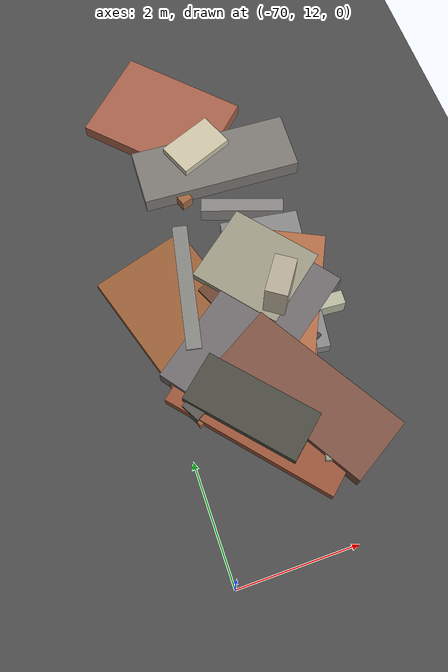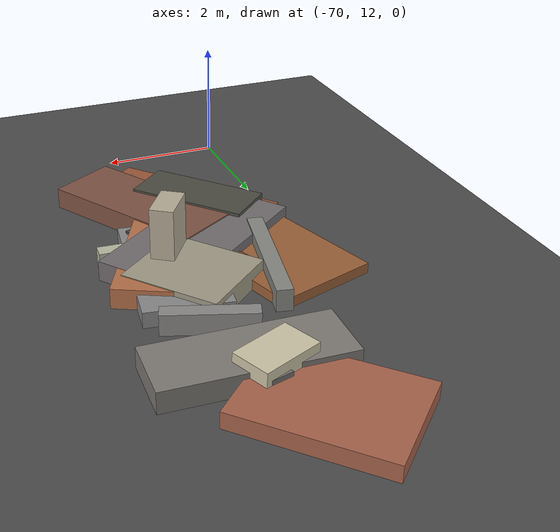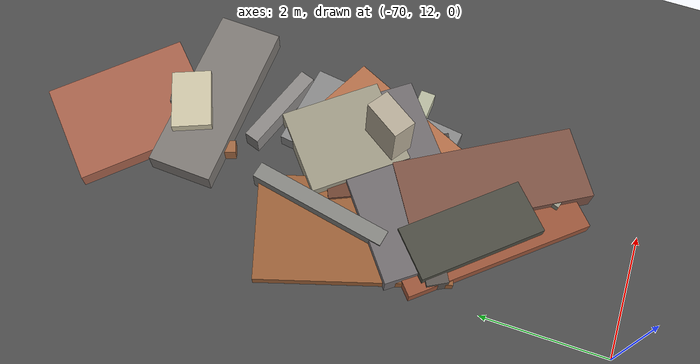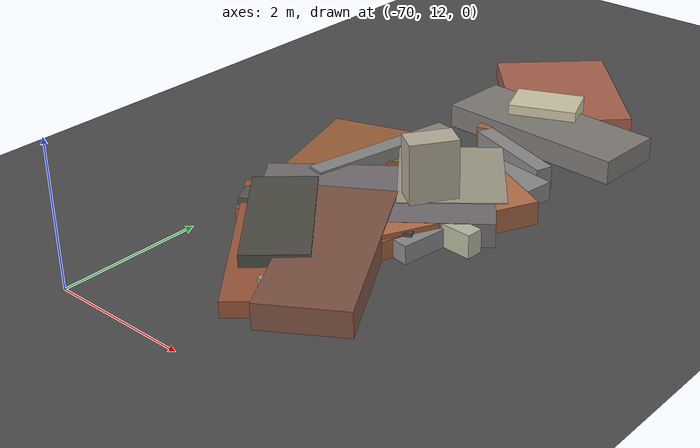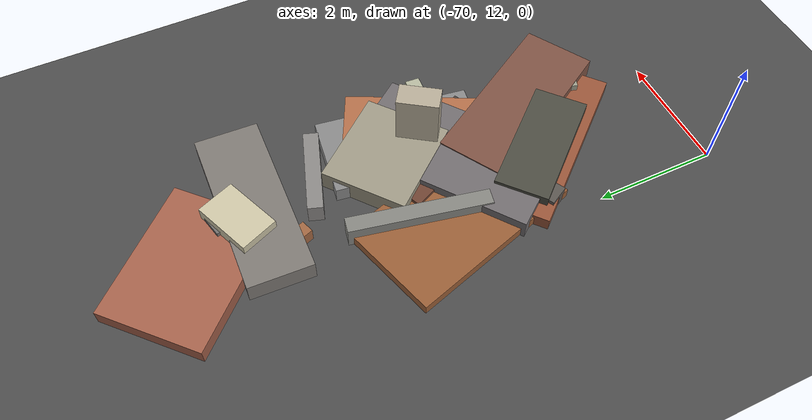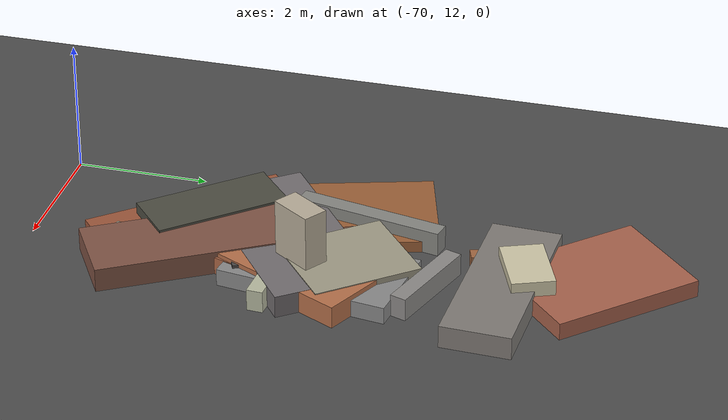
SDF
<sdf version="1.6">
 <world name="navitas_arena">
  <model name="ground_plane">
   <static>true</static>
   <link name="link">
    <collision name="collision">
     <geometry><plane><normal>0 0 1</normal><size>400 400</size></plane></geometry>
     <surface><friction><ode><mu>0.800</mu><mu2>0.800</mu2></ode></friction></surface>
    </collision>
    <visual name="visual">
     <cast_shadows>false</cast_shadows>
     <geometry><plane><normal>0 0 1</normal><size>400 400</size></plane></geometry>
     <material>
      <specular>0.04 0.04 0.04 1</specular>
      <script>
       <uri>file://media/materials/scripts/navitas_asphalt.material</uri>
       <name>Navitas/RealArenaAsphalt</name>
      </script>
     </material>
    </visual>
   </link>
  </model>
  <model name="deb_kolay_20">
   <static>true</static>
   <pose>-68.473 16.077 0.000 0 0 0</pose>
   <link name="link">
    <collision name="col_0">
     <pose>0.680 0.063 0.590 0.000 0.000 0.973</pose>
     <geometry><box><size>0.672 0.378 1.181</size></box></geometry>
    </collision>
    <visual name="vis_0">
     <pose>0.680 0.063 0.590 0.000 0.000 0.973</pose>
     <geometry><box><size>0.672 0.378 1.181</size></box></geometry>
     <material>
      <ambient>0.67 0.63 0.55 1</ambient>
      <diffuse>0.72 0.68 0.60 1</diffuse>
      <specular>0.05 0.05 0.045 1</specular>
     </material>
    </visual>
    <collision name="col_1">
     <pose>0.507 -1.073 0.138 0.000 0.000 1.296</pose>
     <geometry><box><size>1.503 0.236 0.276</size></box></geometry>
    </collision>
    <visual name="vis_1">
     <pose>0.507 -1.073 0.138 0.000 0.000 1.296</pose>
     <geometry><box><size>1.503 0.236 0.276</size></box></geometry>
     <material>
      <ambient>0.31 0.32 0.30 1</ambient>
      <diffuse>0.33 0.34 0.33 1</diffuse>
      <specular>0.05 0.05 0.045 1</specular>
     </material>
    </visual>
    <collision name="col_2">
     <pose>-0.726 0.716 0.182 0.000 0.000 1.370</pose>
     <geometry><box><size>2.263 0.260 0.363</size></box></geometry>
    </collision>
    <visual name="vis_2">
     <pose>-0.726 0.716 0.182 0.000 0.000 1.370</pose>
     <geometry><box><size>2.263 0.260 0.363</size></box></geometry>
     <material>
      <ambient>0.49 0.49 0.47 1</ambient>
      <diffuse>0.53 0.53 0.51 1</diffuse>
      <specular>0.05 0.05 0.045 1</specular>
     </material>
    </visual>
    <collision name="col_3">
     <pose>-0.876 0.113 0.086 0.000 0.000 1.872</pose>
     <geometry><box><size>3.021 1.723 0.171</size></box></geometry>
    </collision>
    <visual name="vis_3">
     <pose>-0.876 0.113 0.086 0.000 0.000 1.872</pose>
     <geometry><box><size>3.021 1.723 0.171</size></box></geometry>
     <material>
      <ambient>0.57 0.35 0.20 1</ambient>
      <diffuse>0.61 0.38 0.22 1</diffuse>
      <specular>0.05 0.05 0.045 1</specular>
     </material>
    </visual>
    <collision name="col_4">
     <pose>0.510 0.709 0.173 0.000 0.000 0.686</pose>
     <geometry><box><size>1.432 1.633 0.347</size></box></geometry>
    </collision>
    <visual name="vis_4">
     <pose>0.510 0.709 0.173 0.000 0.000 0.686</pose>
     <geometry><box><size>1.432 1.633 0.347</size></box></geometry>
     <material>
      <ambient>0.59 0.57 0.49 1</ambient>
      <diffuse>0.63 0.61 0.53 1</diffuse>
      <specular>0.05 0.05 0.045 1</specular>
     </material>
    </visual>
    <collision name="col_5">
     <pose>0.085 -0.306 0.167 0.000 0.000 0.651</pose>
     <geometry><box><size>3.084 1.568 0.333</size></box></geometry>
    </collision>
    <visual name="vis_5">
     <pose>0.085 -0.306 0.167 0.000 0.000 0.651</pose>
     <geometry><box><size>3.084 1.568 0.333</size></box></geometry>
     <material>
      <ambient>0.42 0.40 0.41 1</ambient>
      <diffuse>0.45 0.43 0.44 1</diffuse>
      <specular>0.05 0.05 0.045 1</specular>
     </material>
    </visual>
   </link>
  </model>
  <model name="deb_kolay_27">
   <static>true</static>
   <pose>-68.431 18.974 0.000 0 0 0</pose>
   <link name="link">
    <collision name="col_0">
     <pose>-0.298 -0.391 0.116 0.000 0.000 1.917</pose>
     <geometry><box><size>0.384 0.211 0.233</size></box></geometry>
    </collision>
    <visual name="vis_0">
     <pose>-0.298 -0.391 0.116 0.000 0.000 1.917</pose>
     <geometry><box><size>0.384 0.211 0.233</size></box></geometry>
     <material>
      <ambient>0.59 0.38 0.24 1</ambient>
      <diffuse>0.64 0.41 0.26 1</diffuse>
      <specular>0.05 0.05 0.045 1</specular>
     </material>
    </visual>
    <collision name="col_1">
     <pose>0.386 0.588 0.167 0.000 0.000 1.818</pose>
     <geometry><box><size>0.354 0.419 0.335</size></box></geometry>
    </collision>
    <visual name="vis_1">
     <pose>0.386 0.588 0.167 0.000 0.000 1.818</pose>
     <geometry><box><size>0.354 0.419 0.335</size></box></geometry>
     <material>
      <ambient>0.41 0.41 0.39 1</ambient>
      <diffuse>0.45 0.44 0.43 1</diffuse>
      <specular>0.05 0.05 0.045 1</specular>
     </material>
    </visual>
    <collision name="col_2">
     <pose>0.224 0.345 0.245 0.000 0.000 1.963</pose>
     <geometry><box><size>0.635 0.994 0.490</size></box></geometry>
    </collision>
    <visual name="vis_2">
     <pose>0.224 0.345 0.245 0.000 0.000 1.963</pose>
     <geometry><box><size>0.635 0.994 0.490</size></box></geometry>
     <material>
      <ambient>0.75 0.72 0.61 1</ambient>
      <diffuse>0.81 0.78 0.66 1</diffuse>
      <specular>0.05 0.05 0.045 1</specular>
     </material>
    </visual>
    <collision name="col_3">
     <pose>0.633 -1.012 0.170 0.000 0.000 2.813</pose>
     <geometry><box><size>1.444 0.247 0.340</size></box></geometry>
    </collision>
    <visual name="vis_3">
     <pose>0.633 -1.012 0.170 0.000 0.000 2.813</pose>
     <geometry><box><size>1.444 0.247 0.340</size></box></geometry>
     <material>
      <ambient>0.51 0.50 0.49 1</ambient>
      <diffuse>0.55 0.54 0.53 1</diffuse>
      <specular>0.05 0.05 0.045 1</specular>
     </material>
    </visual>
    <collision name="col_4">
     <pose>-0.139 1.265 0.130 0.000 0.000 2.337</pose>
     <geometry><box><size>2.299 1.712 0.260</size></box></geometry>
    </collision>
    <visual name="vis_4">
     <pose>-0.139 1.265 0.130 0.000 0.000 2.337</pose>
     <geometry><box><size>2.299 1.712 0.260</size></box></geometry>
     <material>
      <ambient>0.61 0.36 0.28 1</ambient>
      <diffuse>0.66 0.39 0.30 1</diffuse>
      <specular>0.05 0.05 0.045 1</specular>
     </material>
    </visual>
    <collision name="col_5">
     <pose>0.480 0.042 0.171 0.000 0.000 3.100</pose>
     <geometry><box><size>2.832 1.034 0.342</size></box></geometry>
    </collision>
    <visual name="vis_5">
     <pose>0.480 0.042 0.171 0.000 0.000 3.100</pose>
     <geometry><box><size>2.832 1.034 0.342</size></box></geometry>
     <material>
      <ambient>0.46 0.45 0.43 1</ambient>
      <diffuse>0.50 0.48 0.46 1</diffuse>
      <specular>0.05 0.05 0.045 1</specular>
     </material>
    </visual>
   </link>
  </model>
  <model name="deb_kolay_200">
   <static>true</static>
   <pose>-68.568 14.465 0.000 0 0 0</pose>
   <link name="link">
    <collision name="col_0">
     <pose>0.779 -0.593 0.167 0.000 0.000 1.257</pose>
     <geometry><box><size>1.234 0.166 0.334</size></box></geometry>
    </collision>
    <visual name="vis_0">
     <pose>0.779 -0.593 0.167 0.000 0.000 1.257</pose>
     <geometry><box><size>1.234 0.166 0.334</size></box></geometry>
     <material>
      <ambient>0.57 0.58 0.51 1</ambient>
      <diffuse>0.62 0.62 0.55 1</diffuse>
      <specular>0.05 0.05 0.045 1</specular>
     </material>
    </visual>
    <collision name="col_1">
     <pose>-0.297 0.015 0.196 0.000 0.000 -0.846</pose>
     <geometry><box><size>2.039 0.873 0.391</size></box></geometry>
    </collision>
    <visual name="vis_1">
     <pose>-0.297 0.015 0.196 0.000 0.000 -0.846</pose>
     <geometry><box><size>2.039 0.873 0.391</size></box></geometry>
     <material>
      <ambient>0.28 0.28 0.24 1</ambient>
      <diffuse>0.30 0.30 0.26 1</diffuse>
      <specular>0.05 0.05 0.045 1</specular>
     </material>
    </visual>
    <collision name="col_2">
     <pose>0.019 -0.044 0.111 0.000 0.000 -0.858</pose>
     <geometry><box><size>3.042 1.545 0.221</size></box></geometry>
    </collision>
    <visual name="vis_2">
     <pose>0.019 -0.044 0.111 0.000 0.000 -0.858</pose>
     <geometry><box><size>3.042 1.545 0.221</size></box></geometry>
     <material>
      <ambient>0.56 0.32 0.21 1</ambient>
      <diffuse>0.61 0.34 0.23 1</diffuse>
      <specular>0.05 0.05 0.045 1</specular>
     </material>
    </visual>
    <collision name="col_3">
     <pose>-1.167 0.296 0.143 0.000 0.000 -1.069</pose>
     <geometry><box><size>0.346 0.195 0.287</size></box></geometry>
    </collision>
    <visual name="vis_3">
     <pose>-1.167 0.296 0.143 0.000 0.000 -1.069</pose>
     <geometry><box><size>0.346 0.195 0.287</size></box></geometry>
     <material>
      <ambient>0.34 0.32 0.30 1</ambient>
      <diffuse>0.36 0.34 0.32 1</diffuse>
      <specular>0.05 0.05 0.045 1</specular>
     </material>
    </visual>
    <collision name="col_4">
     <pose>0.638 -0.076 0.177 0.000 0.000 -1.029</pose>
     <geometry><box><size>2.909 1.185 0.354</size></box></geometry>
    </collision>
    <visual name="vis_4">
     <pose>0.638 -0.076 0.177 0.000 0.000 -1.029</pose>
     <geometry><box><size>2.909 1.185 0.354</size></box></geometry>
     <material>
      <ambient>0.46 0.30 0.25 1</ambient>
      <diffuse>0.50 0.33 0.27 1</diffuse>
      <specular>0.05 0.05 0.045 1</specular>
     </material>
    </visual>
    <collision name="col_5">
     <pose>-0.279 0.246 0.093 0.000 0.000 -0.943</pose>
     <geometry><box><size>2.373 0.218 0.185</size></box></geometry>
    </collision>
    <visual name="vis_5">
     <pose>-0.279 0.246 0.093 0.000 0.000 -0.943</pose>
     <geometry><box><size>2.373 0.218 0.185</size></box></geometry>
     <material>
      <ambient>0.67 0.65 0.55 1</ambient>
      <diffuse>0.72 0.70 0.60 1</diffuse>
      <specular>0.05 0.05 0.045 1</specular>
     </material>
    </visual>
    <collision name="col_6">
     <pose>-0.322 0.882 0.148 0.000 0.000 1.419</pose>
     <geometry><box><size>1.385 0.166 0.297</size></box></geometry>
    </collision>
    <visual name="vis_6">
     <pose>-0.322 0.882 0.148 0.000 0.000 1.419</pose>
     <geometry><box><size>1.385 0.166 0.297</size></box></geometry>
     <material>
      <ambient>0.45 0.43 0.41 1</ambient>
      <diffuse>0.48 0.46 0.45 1</diffuse>
      <specular>0.05 0.05 0.045 1</specular>
     </material>
    </visual>
   </link>
  </model>
  <model name="deb_kolay_205">
   <static>true</static>
   <pose>-67.836 15.958 0.000 0 0 0</pose>
   <link name="link">
    <collision name="col_0">
     <pose>0.245 -0.529 0.152 0.000 0.000 -1.127</pose>
     <geometry><box><size>0.509 0.264 0.304</size></box></geometry>
    </collision>
    <visual name="vis_0">
     <pose>0.245 -0.529 0.152 0.000 0.000 -1.127</pose>
     <geometry><box><size>0.509 0.264 0.304</size></box></geometry>
     <material>
      <ambient>0.27 0.26 0.25 1</ambient>
      <diffuse>0.30 0.28 0.27 1</diffuse>
      <specular>0.05 0.05 0.045 1</specular>
     </material>
    </visual>
    <collision name="col_1">
     <pose>0.061 0.263 0.069 0.000 0.000 -0.201</pose>
     <geometry><box><size>0.453 0.338 0.138</size></box></geometry>
    </collision>
    <visual name="vis_1">
     <pose>0.061 0.263 0.069 0.000 0.000 -0.201</pose>
     <geometry><box><size>0.453 0.338 0.138</size></box></geometry>
     <material>
      <ambient>0.47 0.46 0.39 1</ambient>
      <diffuse>0.51 0.50 0.42 1</diffuse>
      <specular>0.05 0.05 0.045 1</specular>
     </material>
    </visual>
    <collision name="col_2">
     <pose>-0.292 -0.414 0.134 0.000 0.000 1.248</pose>
     <geometry><box><size>1.486 1.474 0.268</size></box></geometry>
    </collision>
    <visual name="vis_2">
     <pose>-0.292 -0.414 0.134 0.000 0.000 1.248</pose>
     <geometry><box><size>1.486 1.474 0.268</size></box></geometry>
     <material>
      <ambient>0.63 0.38 0.26 1</ambient>
      <diffuse>0.68 0.41 0.28 1</diffuse>
      <specular>0.05 0.05 0.045 1</specular>
     </material>
    </visual>
    <collision name="col_3">
     <pose>0.034 0.105 0.166 0.000 0.000 1.116</pose>
     <geometry><box><size>2.555 1.352 0.332</size></box></geometry>
    </collision>
    <visual name="vis_3">
     <pose>0.034 0.105 0.166 0.000 0.000 1.116</pose>
     <geometry><box><size>2.555 1.352 0.332</size></box></geometry>
     <material>
      <ambient>0.66 0.41 0.27 1</ambient>
      <diffuse>0.71 0.44 0.29 1</diffuse>
      <specular>0.05 0.05 0.045 1</specular>
     </material>
    </visual>
    <collision name="col_4">
     <pose>0.060 0.451 0.129 0.000 0.000 1.429</pose>
     <geometry><box><size>2.567 1.370 0.258</size></box></geometry>
    </collision>
    <visual name="vis_4">
     <pose>0.060 0.451 0.129 0.000 0.000 1.429</pose>
     <geometry><box><size>2.567 1.370 0.258</size></box></geometry>
     <material>
      <ambient>0.50 0.50 0.50 1</ambient>
      <diffuse>0.54 0.54 0.54 1</diffuse>
      <specular>0.05 0.05 0.045 1</specular>
     </material>
    </visual>
    <collision name="col_5">
     <pose>0.037 -0.131 0.164 0.000 0.000 -0.063</pose>
     <geometry><box><size>2.066 0.238 0.328</size></box></geometry>
    </collision>
    <visual name="vis_5">
     <pose>0.037 -0.131 0.164 0.000 0.000 -0.063</pose>
     <geometry><box><size>2.066 0.238 0.328</size></box></geometry>
     <material>
      <ambient>0.67 0.67 0.58 1</ambient>
      <diffuse>0.72 0.73 0.63 1</diffuse>
      <specular>0.05 0.05 0.045 1</specular>
     </material>
    </visual>
    <collision name="col_6">
     <pose>-0.506 0.203 0.114 0.000 0.000 -1.145</pose>
     <geometry><box><size>1.569 0.787 0.227</size></box></geometry>
    </collision>
    <visual name="vis_6">
     <pose>-0.506 0.203 0.114 0.000 0.000 -1.145</pose>
     <geometry><box><size>1.569 0.787 0.227</size></box></geometry>
     <material>
      <ambient>0.41 0.25 0.19 1</ambient>
      <diffuse>0.44 0.27 0.20 1</diffuse>
      <specular>0.05 0.05 0.045 1</specular>
     </material>
    </visual>
   </link>
  </model>
 </world>
</sdf>
